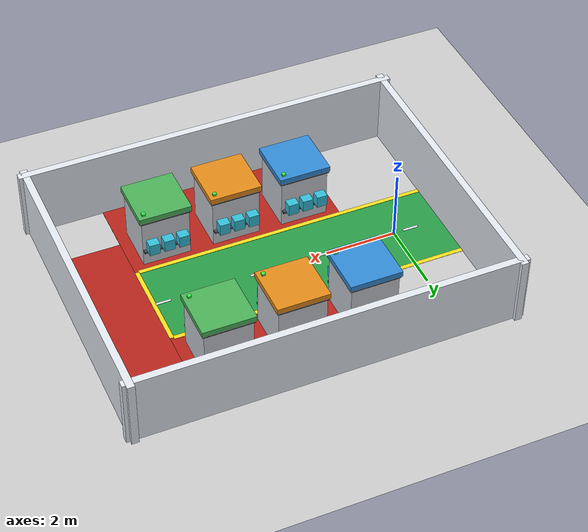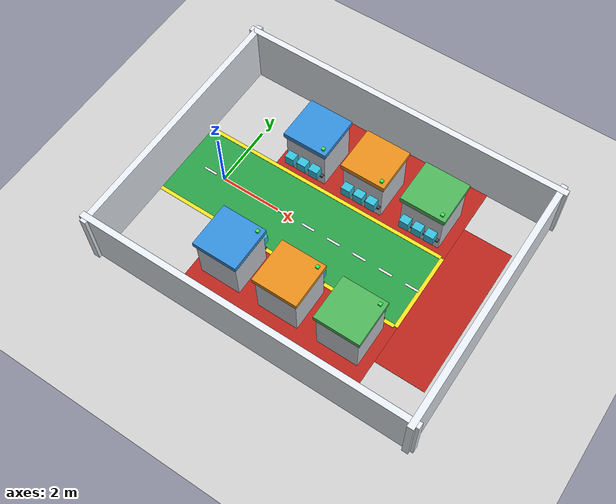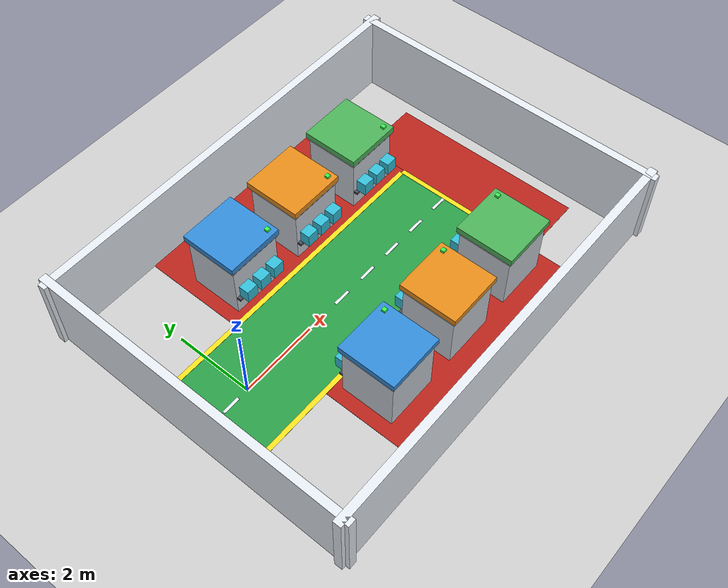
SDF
<sdf version='1.6'>
  <world name='empty'>
    <physics name='8ms' type='ode'>
      <max_step_size>0.008</max_step_size>
      <real_time_factor>1</real_time_factor>
      <real_time_update_rate>125</real_time_update_rate>
    </physics>
    <plugin name='gz::sim::systems::Physics' filename='gz-sim-physics-system'/>
    <plugin name='gz::sim::systems::UserCommands' filename='gz-sim-user-commands-system'/>
    <plugin name='gz::sim::systems::SceneBroadcaster' filename='gz-sim-scene-broadcaster-system'/>
    <plugin name='gz::sim::systems::Contact' filename='gz-sim-contact-system'/>
    <plugin name='gz::sim::systems::Sensors' filename='gz-sim-sensors-system'>
      <render_engine>ogre2</render_engine>
    </plugin>
    <plugin name='gz::sim::systems::Imu' filename='gz-sim-imu-system'/>
    <plugin filename="gz-sim-navsat-system" name="gz::sim::systems::NavSat"></plugin>
    <spherical_coordinates>
      <surface_model>EARTH_WGS84</surface_model>
      <world_frame_orientation>ENU</world_frame_orientation>
      <latitude_deg>47.478950</latitude_deg>
      <longitude_deg>19.057785</longitude_deg>
      <elevation>0</elevation>
      <heading_deg>0</heading_deg>
    </spherical_coordinates>
    <light name='sun' type='directional'>
      <cast_shadows>1</cast_shadows>
      <pose frame=''>0 0 10 0 -0 0</pose>
      <diffuse>0.8 0.8 0.8 1</diffuse>
      <specular>0.2 0.2 0.2 1</specular>
      <attenuation><range>1000</range><constant>0.9</constant><linear>0.01</linear><quadratic>0.001</quadratic></attenuation>
      <direction>-0.5 0.1 -0.9</direction>
    </light>
    <model name='ground_plane'>
      <static>1</static>
      <link name='link'>
        <collision name='collision'>
          <geometry><plane><normal>0 0 1</normal><size>100 100</size></plane></geometry>
        </collision>
        <visual name='visual'>
          <geometry><plane><normal>0 0 1</normal><size>100 100</size></plane></geometry>
          <material><ambient>0.8 0.8 0.8 1</ambient><diffuse>0.8 0.8 0.8 1</diffuse><specular>0.8 0.8 0.8 1</specular></material>
        </visual>
      </link>
    </model>
    <model name='tool_s1'>
      <static>1</static>
      <pose>2.0 -2.2 0.8 0 0 0.0</pose>
      <link name='link'>
        <collision name='collision'>
          <geometry><box><size>1.4 1.4 1.6</size></box></geometry>
          <surface><contact><ode/></contact></surface>
        </collision>
        <visual name='body'>
          <pose>0.000 0.000 -0.050 0 0 0</pose>
          <geometry><box><size>1.3399999999999999 1.3399999999999999 1.5</size></box></geometry>
          <material><ambient>0.62 0.64 0.68 1</ambient><diffuse>0.78 0.80 0.83 1</diffuse><specular>0.35 0.35 0.4 1</specular></material>
        </visual>
        <visual name='top_panel'>
          <pose>0.000 0.000 0.780 0 0 0</pose>
          <geometry><box><size>1.46 1.46 0.16</size></box></geometry>
          <material><ambient>0.20 0.55 0.85 1</ambient><diffuse>0.20 0.55 0.85 1</diffuse><specular>0.4 0.4 0.4 1</specular></material>
        </visual>
        <visual name='seam'>
          <pose>0.000 0.000 0.660 0 0 0</pose>
          <geometry><box><size>1.42 1.42 0.04</size></box></geometry>
          <material><ambient>0.15 0.15 0.17 1</ambient><diffuse>0.15 0.15 0.17 1</diffuse><specular>0.2 0.2 0.2 1</specular></material>
        </visual>
        <visual name='foup0'>
          <pose>-0.420 0.820 -0.100 0 0 0</pose>
          <geometry><box><size>0.3 0.26 0.34</size></box></geometry>
          <material><ambient>0.10 0.45 0.55 1</ambient><diffuse>0.20 0.75 0.85 0.9</diffuse><specular>0.3 0.5 0.5 1</specular></material>
        </visual>
        <visual name='foup1'>
          <pose>0.000 0.820 -0.100 0 0 0</pose>
          <geometry><box><size>0.3 0.26 0.34</size></box></geometry>
          <material><ambient>0.10 0.45 0.55 1</ambient><diffuse>0.20 0.75 0.85 0.9</diffuse><specular>0.3 0.5 0.5 1</specular></material>
        </visual>
        <visual name='foup2'>
          <pose>0.420 0.820 -0.100 0 0 0</pose>
          <geometry><box><size>0.3 0.26 0.34</size></box></geometry>
          <material><ambient>0.10 0.45 0.55 1</ambient><diffuse>0.20 0.75 0.85 0.9</diffuse><specular>0.3 0.5 0.5 1</specular></material>
        </visual>
        <visual name='dock'>
          <pose>0.000 0.720 -0.300 0 0 0</pose>
          <geometry><box><size>1.2999999999999998 0.1 0.06</size></box></geometry>
          <material><ambient>0.25 0.25 0.28 1</ambient><diffuse>0.30 0.30 0.34 1</diffuse><specular>0.2 0.2 0.2 1</specular></material>
        </visual>
        <visual name='status'>
          <pose>0.560 0.560 0.860 0 0 0</pose>
          <geometry><box><size>0.1 0.1 0.12</size></box></geometry>
          <material><ambient>0.10 0.85 0.20 1</ambient><diffuse>0.20 1.0 0.30 1</diffuse><specular>0.6 0.6 0.6 1</specular></material>
        </visual>
      </link>
    </model>
    <model name='tool_n1'>
      <static>1</static>
      <pose>2.0 2.2 0.8 0 0 0.0</pose>
      <link name='link'>
        <collision name='collision'>
          <geometry><box><size>1.4 1.4 1.6</size></box></geometry>
          <surface><contact><ode/></contact></surface>
        </collision>
        <visual name='body'>
          <pose>0.000 0.000 -0.050 0 0 0</pose>
          <geometry><box><size>1.3399999999999999 1.3399999999999999 1.5</size></box></geometry>
          <material><ambient>0.62 0.64 0.68 1</ambient><diffuse>0.78 0.80 0.83 1</diffuse><specular>0.35 0.35 0.4 1</specular></material>
        </visual>
        <visual name='top_panel'>
          <pose>0.000 0.000 0.780 0 0 0</pose>
          <geometry><box><size>1.46 1.46 0.16</size></box></geometry>
          <material><ambient>0.20 0.55 0.85 1</ambient><diffuse>0.20 0.55 0.85 1</diffuse><specular>0.4 0.4 0.4 1</specular></material>
        </visual>
        <visual name='seam'>
          <pose>0.000 0.000 0.660 0 0 0</pose>
          <geometry><box><size>1.42 1.42 0.04</size></box></geometry>
          <material><ambient>0.15 0.15 0.17 1</ambient><diffuse>0.15 0.15 0.17 1</diffuse><specular>0.2 0.2 0.2 1</specular></material>
        </visual>
        <visual name='foup0'>
          <pose>-0.420 -0.820 -0.100 0 0 0</pose>
          <geometry><box><size>0.3 0.26 0.34</size></box></geometry>
          <material><ambient>0.10 0.45 0.55 1</ambient><diffuse>0.20 0.75 0.85 0.9</diffuse><specular>0.3 0.5 0.5 1</specular></material>
        </visual>
        <visual name='foup1'>
          <pose>0.000 -0.820 -0.100 0 0 0</pose>
          <geometry><box><size>0.3 0.26 0.34</size></box></geometry>
          <material><ambient>0.10 0.45 0.55 1</ambient><diffuse>0.20 0.75 0.85 0.9</diffuse><specular>0.3 0.5 0.5 1</specular></material>
        </visual>
        <visual name='foup2'>
          <pose>0.420 -0.820 -0.100 0 0 0</pose>
          <geometry><box><size>0.3 0.26 0.34</size></box></geometry>
          <material><ambient>0.10 0.45 0.55 1</ambient><diffuse>0.20 0.75 0.85 0.9</diffuse><specular>0.3 0.5 0.5 1</specular></material>
        </visual>
        <visual name='dock'>
          <pose>0.000 -0.720 -0.300 0 0 0</pose>
          <geometry><box><size>1.2999999999999998 0.1 0.06</size></box></geometry>
          <material><ambient>0.25 0.25 0.28 1</ambient><diffuse>0.30 0.30 0.34 1</diffuse><specular>0.2 0.2 0.2 1</specular></material>
        </visual>
        <visual name='status'>
          <pose>0.560 -0.560 0.860 0 0 0</pose>
          <geometry><box><size>0.1 0.1 0.12</size></box></geometry>
          <material><ambient>0.10 0.85 0.20 1</ambient><diffuse>0.20 1.0 0.30 1</diffuse><specular>0.6 0.6 0.6 1</specular></material>
        </visual>
      </link>
    </model>
    <model name='tool_s2'>
      <static>1</static>
      <pose>4.0 -2.2 0.8 0 0 0.0</pose>
      <link name='link'>
        <collision name='collision'>
          <geometry><box><size>1.4 1.4 1.6</size></box></geometry>
          <surface><contact><ode/></contact></surface>
        </collision>
        <visual name='body'>
          <pose>0.000 0.000 -0.050 0 0 0</pose>
          <geometry><box><size>1.3399999999999999 1.3399999999999999 1.5</size></box></geometry>
          <material><ambient>0.62 0.64 0.68 1</ambient><diffuse>0.78 0.80 0.83 1</diffuse><specular>0.35 0.35 0.4 1</specular></material>
        </visual>
        <visual name='top_panel'>
          <pose>0.000 0.000 0.780 0 0 0</pose>
          <geometry><box><size>1.46 1.46 0.16</size></box></geometry>
          <material><ambient>0.90 0.55 0.10 1</ambient><diffuse>0.90 0.55 0.10 1</diffuse><specular>0.4 0.4 0.4 1</specular></material>
        </visual>
        <visual name='seam'>
          <pose>0.000 0.000 0.660 0 0 0</pose>
          <geometry><box><size>1.42 1.42 0.04</size></box></geometry>
          <material><ambient>0.15 0.15 0.17 1</ambient><diffuse>0.15 0.15 0.17 1</diffuse><specular>0.2 0.2 0.2 1</specular></material>
        </visual>
        <visual name='foup0'>
          <pose>-0.420 0.820 -0.100 0 0 0</pose>
          <geometry><box><size>0.3 0.26 0.34</size></box></geometry>
          <material><ambient>0.10 0.45 0.55 1</ambient><diffuse>0.20 0.75 0.85 0.9</diffuse><specular>0.3 0.5 0.5 1</specular></material>
        </visual>
        <visual name='foup1'>
          <pose>0.000 0.820 -0.100 0 0 0</pose>
          <geometry><box><size>0.3 0.26 0.34</size></box></geometry>
          <material><ambient>0.10 0.45 0.55 1</ambient><diffuse>0.20 0.75 0.85 0.9</diffuse><specular>0.3 0.5 0.5 1</specular></material>
        </visual>
        <visual name='foup2'>
          <pose>0.420 0.820 -0.100 0 0 0</pose>
          <geometry><box><size>0.3 0.26 0.34</size></box></geometry>
          <material><ambient>0.10 0.45 0.55 1</ambient><diffuse>0.20 0.75 0.85 0.9</diffuse><specular>0.3 0.5 0.5 1</specular></material>
        </visual>
        <visual name='dock'>
          <pose>0.000 0.720 -0.300 0 0 0</pose>
          <geometry><box><size>1.2999999999999998 0.1 0.06</size></box></geometry>
          <material><ambient>0.25 0.25 0.28 1</ambient><diffuse>0.30 0.30 0.34 1</diffuse><specular>0.2 0.2 0.2 1</specular></material>
        </visual>
        <visual name='status'>
          <pose>0.560 0.560 0.860 0 0 0</pose>
          <geometry><box><size>0.1 0.1 0.12</size></box></geometry>
          <material><ambient>0.10 0.85 0.20 1</ambient><diffuse>0.20 1.0 0.30 1</diffuse><specular>0.6 0.6 0.6 1</specular></material>
        </visual>
      </link>
    </model>
    <model name='tool_n2'>
      <static>1</static>
      <pose>4.0 2.2 0.8 0 0 0.0</pose>
      <link name='link'>
        <collision name='collision'>
          <geometry><box><size>1.4 1.4 1.6</size></box></geometry>
          <surface><contact><ode/></contact></surface>
        </collision>
        <visual name='body'>
          <pose>0.000 0.000 -0.050 0 0 0</pose>
          <geometry><box><size>1.3399999999999999 1.3399999999999999 1.5</size></box></geometry>
          <material><ambient>0.62 0.64 0.68 1</ambient><diffuse>0.78 0.80 0.83 1</diffuse><specular>0.35 0.35 0.4 1</specular></material>
        </visual>
        <visual name='top_panel'>
          <pose>0.000 0.000 0.780 0 0 0</pose>
          <geometry><box><size>1.46 1.46 0.16</size></box></geometry>
          <material><ambient>0.90 0.55 0.10 1</ambient><diffuse>0.90 0.55 0.10 1</diffuse><specular>0.4 0.4 0.4 1</specular></material>
        </visual>
        <visual name='seam'>
          <pose>0.000 0.000 0.660 0 0 0</pose>
          <geometry><box><size>1.42 1.42 0.04</size></box></geometry>
          <material><ambient>0.15 0.15 0.17 1</ambient><diffuse>0.15 0.15 0.17 1</diffuse><specular>0.2 0.2 0.2 1</specular></material>
        </visual>
        <visual name='foup0'>
          <pose>-0.420 -0.820 -0.100 0 0 0</pose>
          <geometry><box><size>0.3 0.26 0.34</size></box></geometry>
          <material><ambient>0.10 0.45 0.55 1</ambient><diffuse>0.20 0.75 0.85 0.9</diffuse><specular>0.3 0.5 0.5 1</specular></material>
        </visual>
        <visual name='foup1'>
          <pose>0.000 -0.820 -0.100 0 0 0</pose>
          <geometry><box><size>0.3 0.26 0.34</size></box></geometry>
          <material><ambient>0.10 0.45 0.55 1</ambient><diffuse>0.20 0.75 0.85 0.9</diffuse><specular>0.3 0.5 0.5 1</specular></material>
        </visual>
        <visual name='foup2'>
          <pose>0.420 -0.820 -0.100 0 0 0</pose>
          <geometry><box><size>0.3 0.26 0.34</size></box></geometry>
          <material><ambient>0.10 0.45 0.55 1</ambient><diffuse>0.20 0.75 0.85 0.9</diffuse><specular>0.3 0.5 0.5 1</specular></material>
        </visual>
        <visual name='dock'>
          <pose>0.000 -0.720 -0.300 0 0 0</pose>
          <geometry><box><size>1.2999999999999998 0.1 0.06</size></box></geometry>
          <material><ambient>0.25 0.25 0.28 1</ambient><diffuse>0.30 0.30 0.34 1</diffuse><specular>0.2 0.2 0.2 1</specular></material>
        </visual>
        <visual name='status'>
          <pose>0.560 -0.560 0.860 0 0 0</pose>
          <geometry><box><size>0.1 0.1 0.12</size></box></geometry>
          <material><ambient>0.10 0.85 0.20 1</ambient><diffuse>0.20 1.0 0.30 1</diffuse><specular>0.6 0.6 0.6 1</specular></material>
        </visual>
      </link>
    </model>
    <model name='tool_s3'>
      <static>1</static>
      <pose>6.0 -2.2 0.8 0 0 0.0</pose>
      <link name='link'>
        <collision name='collision'>
          <geometry><box><size>1.4 1.4 1.6</size></box></geometry>
          <surface><contact><ode/></contact></surface>
        </collision>
        <visual name='body'>
          <pose>0.000 0.000 -0.050 0 0 0</pose>
          <geometry><box><size>1.3399999999999999 1.3399999999999999 1.5</size></box></geometry>
          <material><ambient>0.62 0.64 0.68 1</ambient><diffuse>0.78 0.80 0.83 1</diffuse><specular>0.35 0.35 0.4 1</specular></material>
        </visual>
        <visual name='top_panel'>
          <pose>0.000 0.000 0.780 0 0 0</pose>
          <geometry><box><size>1.46 1.46 0.16</size></box></geometry>
          <material><ambient>0.30 0.70 0.35 1</ambient><diffuse>0.30 0.70 0.35 1</diffuse><specular>0.4 0.4 0.4 1</specular></material>
        </visual>
        <visual name='seam'>
          <pose>0.000 0.000 0.660 0 0 0</pose>
          <geometry><box><size>1.42 1.42 0.04</size></box></geometry>
          <material><ambient>0.15 0.15 0.17 1</ambient><diffuse>0.15 0.15 0.17 1</diffuse><specular>0.2 0.2 0.2 1</specular></material>
        </visual>
        <visual name='foup0'>
          <pose>-0.420 0.820 -0.100 0 0 0</pose>
          <geometry><box><size>0.3 0.26 0.34</size></box></geometry>
          <material><ambient>0.10 0.45 0.55 1</ambient><diffuse>0.20 0.75 0.85 0.9</diffuse><specular>0.3 0.5 0.5 1</specular></material>
        </visual>
        <visual name='foup1'>
          <pose>0.000 0.820 -0.100 0 0 0</pose>
          <geometry><box><size>0.3 0.26 0.34</size></box></geometry>
          <material><ambient>0.10 0.45 0.55 1</ambient><diffuse>0.20 0.75 0.85 0.9</diffuse><specular>0.3 0.5 0.5 1</specular></material>
        </visual>
        <visual name='foup2'>
          <pose>0.420 0.820 -0.100 0 0 0</pose>
          <geometry><box><size>0.3 0.26 0.34</size></box></geometry>
          <material><ambient>0.10 0.45 0.55 1</ambient><diffuse>0.20 0.75 0.85 0.9</diffuse><specular>0.3 0.5 0.5 1</specular></material>
        </visual>
        <visual name='dock'>
          <pose>0.000 0.720 -0.300 0 0 0</pose>
          <geometry><box><size>1.2999999999999998 0.1 0.06</size></box></geometry>
          <material><ambient>0.25 0.25 0.28 1</ambient><diffuse>0.30 0.30 0.34 1</diffuse><specular>0.2 0.2 0.2 1</specular></material>
        </visual>
        <visual name='status'>
          <pose>0.560 0.560 0.860 0 0 0</pose>
          <geometry><box><size>0.1 0.1 0.12</size></box></geometry>
          <material><ambient>0.10 0.85 0.20 1</ambient><diffuse>0.20 1.0 0.30 1</diffuse><specular>0.6 0.6 0.6 1</specular></material>
        </visual>
      </link>
    </model>
    <model name='tool_n3'>
      <static>1</static>
      <pose>6.0 2.2 0.8 0 0 0.0</pose>
      <link name='link'>
        <collision name='collision'>
          <geometry><box><size>1.4 1.4 1.6</size></box></geometry>
          <surface><contact><ode/></contact></surface>
        </collision>
        <visual name='body'>
          <pose>0.000 0.000 -0.050 0 0 0</pose>
          <geometry><box><size>1.3399999999999999 1.3399999999999999 1.5</size></box></geometry>
          <material><ambient>0.62 0.64 0.68 1</ambient><diffuse>0.78 0.80 0.83 1</diffuse><specular>0.35 0.35 0.4 1</specular></material>
        </visual>
        <visual name='top_panel'>
          <pose>0.000 0.000 0.780 0 0 0</pose>
          <geometry><box><size>1.46 1.46 0.16</size></box></geometry>
          <material><ambient>0.30 0.70 0.35 1</ambient><diffuse>0.30 0.70 0.35 1</diffuse><specular>0.4 0.4 0.4 1</specular></material>
        </visual>
        <visual name='seam'>
          <pose>0.000 0.000 0.660 0 0 0</pose>
          <geometry><box><size>1.42 1.42 0.04</size></box></geometry>
          <material><ambient>0.15 0.15 0.17 1</ambient><diffuse>0.15 0.15 0.17 1</diffuse><specular>0.2 0.2 0.2 1</specular></material>
        </visual>
        <visual name='foup0'>
          <pose>-0.420 -0.820 -0.100 0 0 0</pose>
          <geometry><box><size>0.3 0.26 0.34</size></box></geometry>
          <material><ambient>0.10 0.45 0.55 1</ambient><diffuse>0.20 0.75 0.85 0.9</diffuse><specular>0.3 0.5 0.5 1</specular></material>
        </visual>
        <visual name='foup1'>
          <pose>0.000 -0.820 -0.100 0 0 0</pose>
          <geometry><box><size>0.3 0.26 0.34</size></box></geometry>
          <material><ambient>0.10 0.45 0.55 1</ambient><diffuse>0.20 0.75 0.85 0.9</diffuse><specular>0.3 0.5 0.5 1</specular></material>
        </visual>
        <visual name='foup2'>
          <pose>0.420 -0.820 -0.100 0 0 0</pose>
          <geometry><box><size>0.3 0.26 0.34</size></box></geometry>
          <material><ambient>0.10 0.45 0.55 1</ambient><diffuse>0.20 0.75 0.85 0.9</diffuse><specular>0.3 0.5 0.5 1</specular></material>
        </visual>
        <visual name='dock'>
          <pose>0.000 -0.720 -0.300 0 0 0</pose>
          <geometry><box><size>1.2999999999999998 0.1 0.06</size></box></geometry>
          <material><ambient>0.25 0.25 0.28 1</ambient><diffuse>0.30 0.30 0.34 1</diffuse><specular>0.2 0.2 0.2 1</specular></material>
        </visual>
        <visual name='status'>
          <pose>0.560 -0.560 0.860 0 0 0</pose>
          <geometry><box><size>0.1 0.1 0.12</size></box></geometry>
          <material><ambient>0.10 0.85 0.20 1</ambient><diffuse>0.20 1.0 0.30 1</diffuse><specular>0.6 0.6 0.6 1</specular></material>
        </visual>
      </link>
    </model>
    <model name='wall_back'>
      <static>1</static>
      <pose>-1.5 0.0 1.0 0 0 0.0</pose>
      <link name='link'>
        <collision name='collision'>
          <geometry><box><size>0.2 8.4 2.0</size></box></geometry>
          <surface><contact><ode/></contact></surface>
        </collision>
        <visual name='visual'>
          <geometry><box><size>0.2 8.4 2.0</size></box></geometry>
          <material><ambient>0.80 0.82 0.86 1</ambient><diffuse>0.90 0.92 0.95 1</diffuse><specular>0.3 0.3 0.35 1</specular></material>
        </visual>
      </link>
    </model>
    <model name='wall_front'>
      <static>1</static>
      <pose>9.0 0.0 1.0 0 0 0.0</pose>
      <link name='link'>
        <collision name='collision'>
          <geometry><box><size>0.2 8.4 2.0</size></box></geometry>
          <surface><contact><ode/></contact></surface>
        </collision>
        <visual name='visual'>
          <geometry><box><size>0.2 8.4 2.0</size></box></geometry>
          <material><ambient>0.80 0.82 0.86 1</ambient><diffuse>0.90 0.92 0.95 1</diffuse><specular>0.3 0.3 0.35 1</specular></material>
        </visual>
      </link>
    </model>
    <model name='wall_south'>
      <static>1</static>
      <pose>3.75 -4.0 1.0 0 0 0.0</pose>
      <link name='link'>
        <collision name='collision'>
          <geometry><box><size>10.9 0.2 2.0</size></box></geometry>
          <surface><contact><ode/></contact></surface>
        </collision>
        <visual name='visual'>
          <geometry><box><size>10.9 0.2 2.0</size></box></geometry>
          <material><ambient>0.80 0.82 0.86 1</ambient><diffuse>0.90 0.92 0.95 1</diffuse><specular>0.3 0.3 0.35 1</specular></material>
        </visual>
      </link>
    </model>
    <model name='wall_north'>
      <static>1</static>
      <pose>3.75 4.0 1.0 0 0 0.0</pose>
      <link name='link'>
        <collision name='collision'>
          <geometry><box><size>10.9 0.2 2.0</size></box></geometry>
          <surface><contact><ode/></contact></surface>
        </collision>
        <visual name='visual'>
          <geometry><box><size>10.9 0.2 2.0</size></box></geometry>
          <material><ambient>0.80 0.82 0.86 1</ambient><diffuse>0.90 0.92 0.95 1</diffuse><specular>0.3 0.3 0.35 1</specular></material>
        </visual>
      </link>
    </model>
    <model name='lane_allowed'>
      <static>1</static>
      <pose>2.75 0.0 0.006 0 0 0</pose>
      <link name='link'>
        <visual name='v'>
          <transparency>0.0</transparency>
          <geometry><box><size>8.3 2.6 0.008</size></box></geometry>
          <material><ambient>0.12 0.45 0.20 1</ambient><diffuse>0.16 0.62 0.28 1</diffuse><specular>0.05 0.05 0.05 1</specular></material>
        </visual>
      </link>
    </model>
    <model name='keepout_floor_0'>
      <static>1</static>
      <pose>4.0 -2.65 0.008 0 0 0</pose>
      <link name='link'>
        <visual name='v'>
          <transparency>0.0</transparency>
          <geometry><box><size>6.0 2.7 0.008</size></box></geometry>
          <material><ambient>0.55 0.10 0.09 1</ambient><diffuse>0.72 0.14 0.11 1</diffuse><specular>0.05 0.05 0.05 1</specular></material>
        </visual>
      </link>
    </model>
    <model name='keepout_floor_1'>
      <static>1</static>
      <pose>4.0 2.65 0.008 0 0 0</pose>
      <link name='link'>
        <visual name='v'>
          <transparency>0.0</transparency>
          <geometry><box><size>6.0 2.7 0.008</size></box></geometry>
          <material><ambient>0.55 0.10 0.09 1</ambient><diffuse>0.72 0.14 0.11 1</diffuse><specular>0.05 0.05 0.05 1</specular></material>
        </visual>
      </link>
    </model>
    <model name='keepout_floor_2'>
      <static>1</static>
      <pose>7.8 0.0 0.008 0 0 0</pose>
      <link name='link'>
        <visual name='v'>
          <transparency>0.0</transparency>
          <geometry><box><size>1.5999999999999996 5.0 0.008</size></box></geometry>
          <material><ambient>0.55 0.10 0.09 1</ambient><diffuse>0.72 0.14 0.11 1</diffuse><specular>0.05 0.05 0.05 1</specular></material>
        </visual>
      </link>
    </model>
    <model name='bound_s'>
      <static>1</static>
      <pose>2.75 -1.3 0.016 0 0 0</pose>
      <link name='link'>
        <visual name='v'>
          <transparency>0.0</transparency>
          <geometry><box><size>8.3 0.12 0.008</size></box></geometry>
          <material><ambient>0.92 0.82 0.10 1</ambient><diffuse>0.98 0.88 0.12 1</diffuse><specular>0.05 0.05 0.05 1</specular></material>
        </visual>
      </link>
    </model>
    <model name='bound_n'>
      <static>1</static>
      <pose>2.75 1.3 0.016 0 0 0</pose>
      <link name='link'>
        <visual name='v'>
          <transparency>0.0</transparency>
          <geometry><box><size>8.3 0.12 0.008</size></box></geometry>
          <material><ambient>0.92 0.82 0.10 1</ambient><diffuse>0.98 0.88 0.12 1</diffuse><specular>0.05 0.05 0.05 1</specular></material>
        </visual>
      </link>
    </model>
    <model name='bound_e'>
      <static>1</static>
      <pose>6.95 0.0 0.016 0 0 0</pose>
      <link name='link'>
        <visual name='v'>
          <transparency>0.0</transparency>
          <geometry><box><size>0.12 2.6 0.008</size></box></geometry>
          <material><ambient>0.92 0.82 0.10 1</ambient><diffuse>0.98 0.88 0.12 1</diffuse><specular>0.05 0.05 0.05 1</specular></material>
        </visual>
      </link>
    </model>
    <model name='lane_dash_0'>
      <static>1</static>
      <pose>-0.5 0.0 0.016 0 0 0</pose>
      <link name='link'>
        <visual name='v'>
          <transparency>0.0</transparency>
          <geometry><box><size>0.45 0.07 0.008</size></box></geometry>
          <material><ambient>0.80 0.82 0.85 1</ambient><diffuse>0.90 0.92 0.95 1</diffuse><specular>0.05 0.05 0.05 1</specular></material>
        </visual>
      </link>
    </model>
    <model name='lane_dash_1'>
      <static>1</static>
      <pose>0.4 0.0 0.016 0 0 0</pose>
      <link name='link'>
        <visual name='v'>
          <transparency>0.0</transparency>
          <geometry><box><size>0.45 0.07 0.008</size></box></geometry>
          <material><ambient>0.80 0.82 0.85 1</ambient><diffuse>0.90 0.92 0.95 1</diffuse><specular>0.05 0.05 0.05 1</specular></material>
        </visual>
      </link>
    </model>
    <model name='lane_dash_2'>
      <static>1</static>
      <pose>1.3 0.0 0.016 0 0 0</pose>
      <link name='link'>
        <visual name='v'>
          <transparency>0.0</transparency>
          <geometry><box><size>0.45 0.07 0.008</size></box></geometry>
          <material><ambient>0.80 0.82 0.85 1</ambient><diffuse>0.90 0.92 0.95 1</diffuse><specular>0.05 0.05 0.05 1</specular></material>
        </visual>
      </link>
    </model>
    <model name='lane_dash_3'>
      <static>1</static>
      <pose>2.2 0.0 0.016 0 0 0</pose>
      <link name='link'>
        <visual name='v'>
          <transparency>0.0</transparency>
          <geometry><box><size>0.45 0.07 0.008</size></box></geometry>
          <material><ambient>0.80 0.82 0.85 1</ambient><diffuse>0.90 0.92 0.95 1</diffuse><specular>0.05 0.05 0.05 1</specular></material>
        </visual>
      </link>
    </model>
    <model name='lane_dash_4'>
      <static>1</static>
      <pose>3.1 0.0 0.016 0 0 0</pose>
      <link name='link'>
        <visual name='v'>
          <transparency>0.0</transparency>
          <geometry><box><size>0.45 0.07 0.008</size></box></geometry>
          <material><ambient>0.80 0.82 0.85 1</ambient><diffuse>0.90 0.92 0.95 1</diffuse><specular>0.05 0.05 0.05 1</specular></material>
        </visual>
      </link>
    </model>
    <model name='lane_dash_5'>
      <static>1</static>
      <pose>4.0 0.0 0.016 0 0 0</pose>
      <link name='link'>
        <visual name='v'>
          <transparency>0.0</transparency>
          <geometry><box><size>0.45 0.07 0.008</size></box></geometry>
          <material><ambient>0.80 0.82 0.85 1</ambient><diffuse>0.90 0.92 0.95 1</diffuse><specular>0.05 0.05 0.05 1</specular></material>
        </visual>
      </link>
    </model>
    <model name='lane_dash_6'>
      <static>1</static>
      <pose>4.9 0.0 0.016 0 0 0</pose>
      <link name='link'>
        <visual name='v'>
          <transparency>0.0</transparency>
          <geometry><box><size>0.45 0.07 0.008</size></box></geometry>
          <material><ambient>0.80 0.82 0.85 1</ambient><diffuse>0.90 0.92 0.95 1</diffuse><specular>0.05 0.05 0.05 1</specular></material>
        </visual>
      </link>
    </model>
    <model name='lane_dash_7'>
      <static>1</static>
      <pose>5.8 0.0 0.016 0 0 0</pose>
      <link name='link'>
        <visual name='v'>
          <transparency>0.0</transparency>
          <geometry><box><size>0.45 0.07 0.008</size></box></geometry>
          <material><ambient>0.80 0.82 0.85 1</ambient><diffuse>0.90 0.92 0.95 1</diffuse><specular>0.05 0.05 0.05 1</specular></material>
        </visual>
      </link>
    </model>
    <model name='lane_dash_8'>
      <static>1</static>
      <pose>6.7 0.0 0.016 0 0 0</pose>
      <link name='link'>
        <visual name='v'>
          <transparency>0.0</transparency>
          <geometry><box><size>0.45 0.07 0.008</size></box></geometry>
          <material><ambient>0.80 0.82 0.85 1</ambient><diffuse>0.90 0.92 0.95 1</diffuse><specular>0.05 0.05 0.05 1</specular></material>
        </visual>
      </link>
    </model>
  </world>
</sdf>
